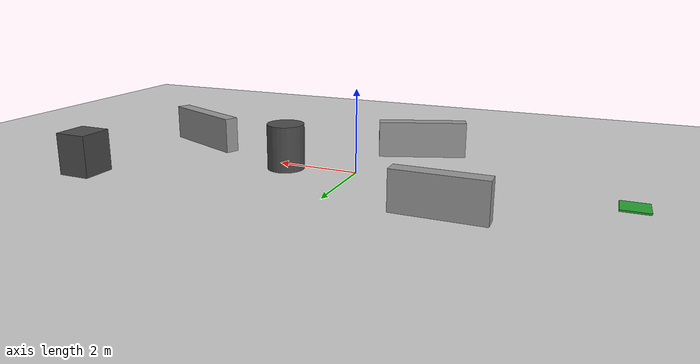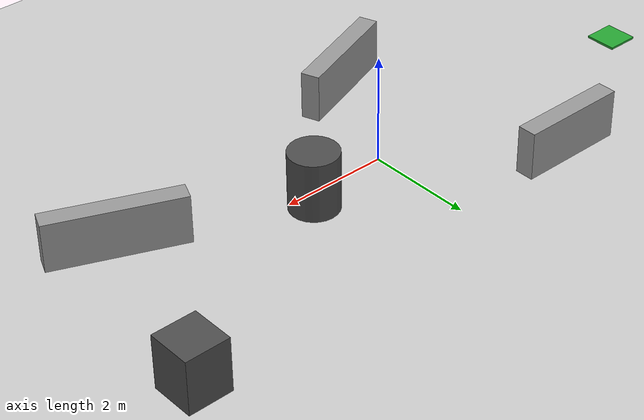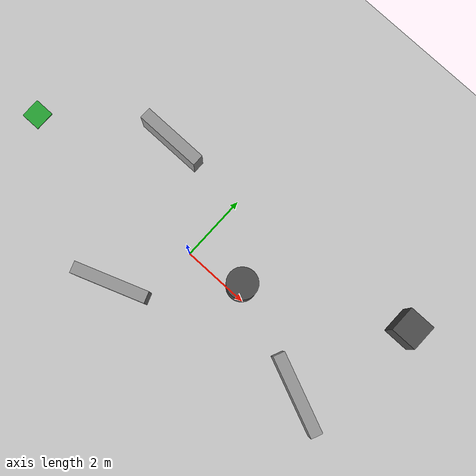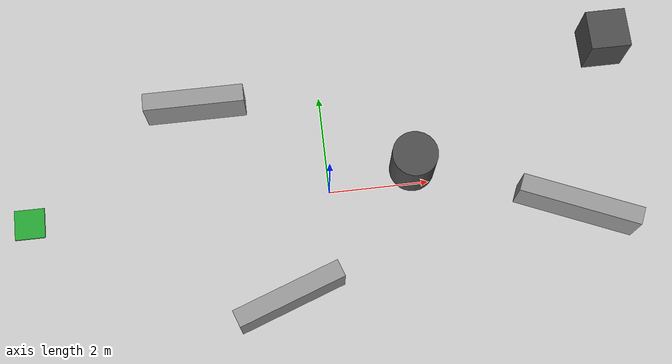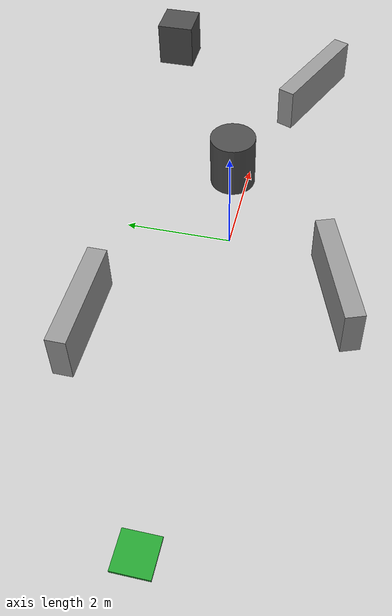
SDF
<?xml version="1.0"?>
<sdf version="1.6">
  <world name="thermal_nav_obstacle_field">
    <physics type="ode">
      <real_time_update_rate>1000</real_time_update_rate>
      <max_step_size>0.001</max_step_size>
      <real_time_factor>1</real_time_factor>
      <ode>
        <solver>
          <type>quick</type>
          <iters>50</iters>
          <sor>1.0</sor>
          <use_dynamic_moi_rescaling>0</use_dynamic_moi_rescaling>
        </solver>
        <constraints>
          <cfm>0.0001</cfm>
          <erp>0.1</erp>
          <contact_max_correcting_vel>2.0</contact_max_correcting_vel>
          <contact_surface_layer>0.005</contact_surface_layer>
        </constraints>
      </ode>
    </physics>

    <include><uri>model://sun</uri></include>
    <include><uri>model://ground_plane</uri></include>

    <scene>
      <ambient>0.45 0.45 0.45 1</ambient>
      <background>0.18 0.20 0.24 1</background>
      <shadows>false</shadows>
    </scene>

    <gui fullscreen="0">
      <camera name="user_camera">
        <pose>0 0 20 0 1.5707 0</pose>
        <view_controller>orbit</view_controller>
      </camera>
    </gui>

    <model name="robot_start_marker">
      <static>true</static>
      <pose>-6.0 0 0 0 0 0</pose>
      <link name="link">
        <visual name="pad">
          <pose>0 0 0.02 0 0 0</pose>
          <geometry><box><size>0.6 0.6 0.04</size></box></geometry>
          <material><script>
            <uri>file://media/materials/scripts/gazebo.material</uri>
            <name>Gazebo/Green</name>
          </script></material>
        </visual>
      </link>
    </model>

    <model name="block_north_gate">
      <static>true</static>
      <pose>-2.5 2.0 0.45 0 0 0</pose>
      <link name="link">
        <collision name="collision"><geometry><box><size>2.0 0.35 0.9</size></box></geometry></collision>
        <visual name="visual"><geometry><box><size>2.0 0.35 0.9</size></box></geometry>
          <material><script><uri>file://media/materials/scripts/gazebo.material</uri><name>Gazebo/Grey</name></script></material>
        </visual>
      </link>
    </model>

    <model name="block_south_gate">
      <static>true</static>
      <pose>-1.0 -2.1 0.45 0 0 0.35</pose>
      <link name="link">
        <collision name="collision"><geometry><box><size>2.2 0.35 0.9</size></box></geometry></collision>
        <visual name="visual"><geometry><box><size>2.2 0.35 0.9</size></box></geometry>
          <material><script><uri>file://media/materials/scripts/gazebo.material</uri><name>Gazebo/Grey</name></script></material>
        </visual>
      </link>
    </model>

    <model name="block_center_column">
      <static>true</static>
      <pose>1.7 0.3 0.55 0 0 0</pose>
      <link name="link">
        <collision name="collision"><geometry><cylinder><radius>0.45</radius><length>1.1</length></cylinder></geometry></collision>
        <visual name="visual"><geometry><cylinder><radius>0.45</radius><length>1.1</length></cylinder></geometry>
          <material><script><uri>file://media/materials/scripts/gazebo.material</uri><name>Gazebo/DarkGrey</name></script></material>
        </visual>
      </link>
    </model>

    <model name="block_east_barrier">
      <static>true</static>
      <pose>4.8 -0.9 0.45 0 0 -0.4</pose>
      <link name="link">
        <collision name="collision"><geometry><box><size>2.4 0.35 0.9</size></box></geometry></collision>
        <visual name="visual"><geometry><box><size>2.4 0.35 0.9</size></box></geometry>
          <material><script><uri>file://media/materials/scripts/gazebo.material</uri><name>Gazebo/Grey</name></script></material>
        </visual>
      </link>
    </model>

    <model name="block_far_column">
      <static>true</static>
      <pose>5.9 2.5 0.5 0 0 0</pose>
      <link name="link">
        <collision name="collision"><geometry><box><size>0.8 0.8 1.0</size></box></geometry></collision>
        <visual name="visual"><geometry><box><size>0.8 0.8 1.0</size></box></geometry>
          <material><script><uri>file://media/materials/scripts/gazebo.material</uri><name>Gazebo/DarkGrey</name></script></material>
        </visual>
      </link>
    </model>
  </world>
</sdf>
